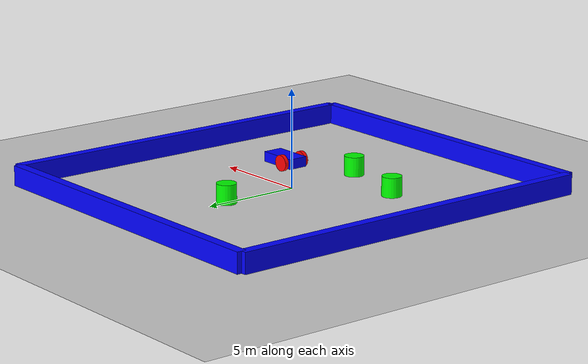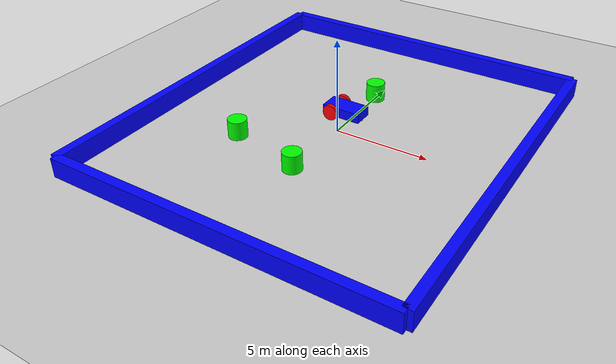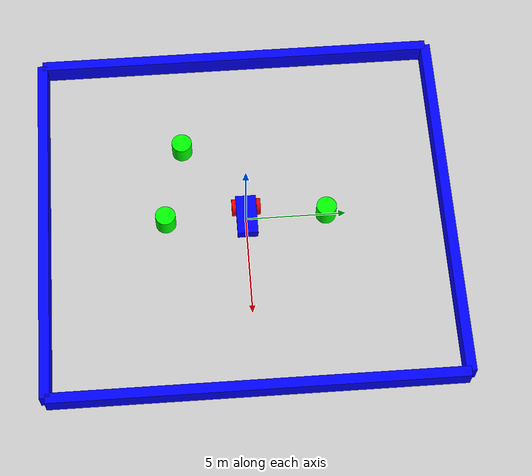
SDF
<?xml version="1.0" ?>
<sdf version="1.8">
    <world name="sensor_world">
        <physics name="1ms" type="ignored">
            <max_step_size>0.001</max_step_size>
            <real_time_factor>1.0</real_time_factor>
        </physics>
        <plugin
            filename="ignition-gazebo-physics-system"
            name="ignition::gazebo::systems::Physics">
        </plugin>
        <plugin
            filename="ignition-gazebo-user-commands-system"
            name="ignition::gazebo::systems::UserCommands">
        </plugin>
        <plugin
            filename="ignition-gazebo-scene-broadcaster-system"
            name="ignition::gazebo::systems::SceneBroadcaster">
        </plugin>
        <plugin filename="ignition-gazebo-imu-system"
                name="ignition::gazebo::systems::Imu">
        </plugin>
        <plugin filename="ignition-gazebo-sensors-system"
                name="ignition::gazebo::systems::Sensors">
            <render_engine>ogre2</render_engine>
        </plugin>
        <plugin filename="ignition-gazebo-contact-system"
                name="ignition::gazebo::systems::Contact">
        </plugin>
        <gui fullscreen="0">

            <!-- 3D scene -->
            <plugin filename="GzScene3D" name="3D View">
                <ignition-gui>
                <title>3D View</title>
                <property type="bool" key="showTitleBar">false</property>
                <property type="string" key="state">docked</property>
                </ignition-gui>

                <engine>ogre2</engine>
                <scene>scene</scene>
                <ambient_light>0.4 0.4 0.4</ambient_light>
                <background_color>0.8 0.8 0.8</background_color>
            </plugin>

            <!-- World control -->
            <plugin filename="WorldControl" name="World control">
                <ignition-gui>
                <title>World control</title>
                <property type="bool" key="showTitleBar">false</property>
                <property type="bool" key="resizable">false</property>
                <property type="double" key="height">72</property>
                <property type="double" key="width">121</property>
                <property type="double" key="z">1</property>

                <property type="string" key="state">floating</property>
                <anchors target="3D View">
                    <line own="left" target="left"/>
                    <line own="bottom" target="bottom"/>
                </anchors>
                </ignition-gui>

                <play_pause>true</play_pause>
                <step>true</step>
                <start_paused>true</start_paused>
                <service>/world/sensor_world/control</service>
                <stats_topic>/world/sensor_world/stats</stats_topic>
            </plugin>

            <!-- World statistics -->
            <plugin filename="WorldStats" name="World stats">
                <ignition-gui>
                <title>World stats</title>
                <property type="bool" key="showTitleBar">false</property>
                <property type="bool" key="resizable">false</property>
                <property type="double" key="height">110</property>
                <property type="double" key="width">290</property>
                <property type="double" key="z">1</property>

                <property type="string" key="state">floating</property>
                <anchors target="3D View">
                    <line own="right" target="right"/>
                    <line own="bottom" target="bottom"/>
                </anchors>
                </ignition-gui>

                <sim_time>true</sim_time>
                <real_time>true</real_time>
                <real_time_factor>true</real_time_factor>
                <iterations>true</iterations>
                <topic>/world/sensor_world/stats</topic>

            </plugin>

            <!-- Entity tree -->
            <plugin filename="EntityTree" name="Entity tree">
            </plugin>

            <!-- KeyPublisher plugin-->
            <plugin filename="KeyPublisher" name="Key Publisher"/>

        </gui>

        <light type="directional" name="sun">
            <cast_shadows>true</cast_shadows>
            <pose>0 0 10 0 0 0</pose>
            <diffuse>0.8 0.8 0.8 1</diffuse>
            <specular>0.2 0.2 0.2 1</specular>
            <attenuation>
                <range>1000</range>
                <constant>0.9</constant>
                <linear>0.01</linear>
                <quadratic>0.001</quadratic>
            </attenuation>
            <direction>-0.5 0.1 -0.9</direction>
        </light>

        <model name="ground_plane">
            <static>true</static>
            <link name="link">
                <collision name="collision">
                <geometry>
                    <plane>
                    <normal>0 0 1</normal>
                    </plane>
                </geometry>
                </collision>
                <visual name="visual">
                <geometry>
                    <plane>
                    <normal>0 0 1</normal>
                    <size>100 100</size>
                    </plane>
                </geometry>
                <material>
                    <ambient>0.8 0.8 0.8 1</ambient>
                    <diffuse>0.8 0.8 0.8 1</diffuse>
                    <specular>0.8 0.8 0.8 1</specular>
                </material>
                </visual>
            </link>
        </model>

        <model name='vehicle_blue' canonical_link='chassis'>
            <pose relative_to='world'>0 0 1 0 0 0</pose>   <!--the pose is relative to the world by default-->

            <frame name="lidar_frame" attached_to='chassis'>
                <pose>0.8 0 0.5 0 0 0</pose>
            </frame>

            <link name='chassis'>
                <pose relative_to='__model__'>0.5 0 0.4 0 0 0</pose>
                <inertial> <!--inertial properties of the link mass, inertia matix-->
                    <mass>1.14395</mass>
                    <inertia>
                        <ixx>0.126164</ixx>
                        <ixy>0</ixy>
                        <ixz>0</ixz>
                        <iyy>0.416519</iyy>
                        <iyz>0</iyz>
                        <izz>0.481014</izz>
                    </inertia>
                </inertial>
                <visual name='visual'>
                    <geometry>
                        <box>
                            <size>2.0 1.0 0.5</size> <!--question: this size is in meter-->
                        </box>
                    </geometry>
                    <!--let's add color to our link-->
                    <material>
                        <ambient>0.0 0.0 1.0 1</ambient>
                        <diffuse>0.0 0.0 1.0 1</diffuse>
                        <specular>0.0 0.0 1.0 1</specular>
                    </material>
                </visual>
                <collision name='collision'> <!--todo: describe why we need the collision-->
                    <geometry>
                        <box>
                            <size>2.0 1.0 0.5</size>
                        </box>
                    </geometry>
                </collision>
                <sensor name="imu_sensor" type="imu">
                    <always_on>1</always_on>
                    <update_rate>1</update_rate>
                    <visualize>true</visualize>
                    <topic>imu</topic>
                </sensor>
                <sensor name='gpu_lidar' type='gpu_lidar'>"
                    <pose relative_to='lidar_frame'>0 0 0 0 0 0</pose>
                    <topic>lidar</topic>
                    <update_rate>10</update_rate>
                    <ray>
                    <scan>
                        <horizontal>
                        <samples>640</samples>
                        <resolution>1</resolution>
                        <min_angle>-1.396263</min_angle>
                        <max_angle>1.396263</max_angle>
                        </horizontal>
                        <vertical>
                        <samples>1</samples>
                        <resolution>0.01</resolution>
                        <min_angle>0</min_angle>
                        <max_angle>0</max_angle>
                        </vertical>
                    </scan>
                    <range>
                        <min>0.08</min>
                        <max>10.0</max>
                        <resolution>0.01</resolution>
                    </range>
                    </ray>
                    <alwaysOn>1</alwaysOn>
                    <visualize>true</visualize>
                </sensor>
            </link>

            <!--let's build the left wheel-->
            <link name='left_wheel'>
                <pose relative_to="chassis">-0.5 0.6 0 -1.5707 0 0</pose> <!--angles are in radian-->
                <inertial>
                    <mass>2</mass>
                    <inertia>
                        <ixx>0.145833</ixx>
                        <ixy>0</ixy>
                        <ixz>0</ixz>
                        <iyy>0.145833</iyy>
                        <iyz>0</iyz>
                        <izz>0.125</izz>
                    </inertia>
                </inertial>
                <visual name='visual'>
                    <geometry>
                        <cylinder>
                            <radius>0.4</radius>
                            <length>0.2</length>
                        </cylinder>
                    </geometry>
                    <material>
                        <ambient>1.0 0.0 0.0 1</ambient>
                        <diffuse>1.0 0.0 0.0 1</diffuse>
                        <specular>1.0 0.0 0.0 1</specular>
                    </material>
                </visual>
                <collision name='collision'>
                    <geometry>
                        <cylinder>
                            <radius>0.4</radius>
                            <length>0.2</length>
                        </cylinder>
                    </geometry>
                </collision>
            </link>

            <!--copy and paste for right wheel but change position-->
            <link name='right_wheel'>
                <pose relative_to="chassis">-0.5 -0.6 0 -1.5707 0 0</pose> <!--angles are in radian-->
                <inertial>
                    <mass>1</mass>
                    <inertia>
                        <ixx>0.145833</ixx>
                        <ixy>0</ixy>
                        <ixz>0</ixz>
                        <iyy>0.145833</iyy>
                        <iyz>0</iyz>
                        <izz>0.125</izz>
                    </inertia>
                </inertial>
                <visual name='visual'>
                    <geometry>
                        <cylinder>
                            <radius>0.4</radius>
                            <length>0.2</length>
                        </cylinder>
                    </geometry>
                    <material>
                        <ambient>1.0 0.0 0.0 1</ambient>
                        <diffuse>1.0 0.0 0.0 1</diffuse>
                        <specular>1.0 0.0 0.0 1</specular>
                    </material>
                </visual>
                <collision name='collision'>
                    <geometry>
                        <cylinder>
                            <radius>0.4</radius>
                            <length>0.2</length>
                        </cylinder>
                    </geometry>
                </collision>
            </link>

            <frame name="caster_frame" attached_to='chassis'>
                <pose>0.8 0 -0.2 0 0 0</pose>
            </frame>

            <!--caster wheel-->
            <link name='caster'>
                <pose relative_to='caster_frame'/>
                <inertial>
                    <mass>1</mass>
                    <inertia>
                        <ixx>0.1</ixx>
                        <ixy>0</ixy>
                        <ixz>0</ixz>
                        <iyy>0.1</iyy>
                        <iyz>0</iyz>
                        <izz>0.1</izz>
                    </inertia>
                </inertial>
                <visual name='visual'>
                    <geometry>
                        <sphere>
                            <radius>0.2</radius>
                        </sphere>
                    </geometry>
                    <material>
                        <ambient>0.0 1 0.0 1</ambient>
                        <diffuse>0.0 1 0.0 1</diffuse>
                        <specular>0.0 1 0.0 1</specular>
                    </material>
                </visual>
                <collision name='collision'>
                    <geometry>
                        <sphere>
                            <radius>0.2</radius>
                        </sphere>
                    </geometry>
                </collision>
            </link>

            <!--connecting these links together using joints-->
            <joint name='left_wheel_joint' type='revolute'> <!--continous joint is not supported yet-->
                <pose relative_to='left_wheel'/>
                <parent>chassis</parent>
                <child>left_wheel</child>
                <axis>
                    <xyz expressed_in='__model__'>0 1 0</xyz> <!--can be descired to any frame or even arbitrary frames-->
                    <limit>
                        <lower>-1.79769e+308</lower>    <!--negative infinity-->
                        <upper>1.79769e+308</upper>     <!--positive infinity-->
                    </limit>
                </axis>
            </joint>

            <joint name='right_wheel_joint' type='revolute'>
                <pose relative_to='right_wheel'/>
                <parent>chassis</parent>
                <child>right_wheel</child>
                <axis>
                    <xyz expressed_in='__model__'>0 1 0</xyz>
                    <limit>
                        <lower>-1.79769e+308</lower>    <!--negative infinity-->
                        <upper>1.79769e+308</upper>     <!--positive infinity-->
                    </limit>
                </axis>
            </joint>

            <!--different type of joints ball joint--> <!--defult value is the child-->
            <joint name='caster_wheel' type='ball'>
                <parent>chassis</parent>
                <child>caster</child>
            </joint>

            <!--diff drive plugin-->
            <plugin
                filename="ignition-gazebo-diff-drive-system"
                name="ignition::gazebo::systems::DiffDrive">
                <left_joint>left_wheel_joint</left_joint>
                <right_joint>right_wheel_joint</right_joint>
                <wheel_separation>1.2</wheel_separation>
                <wheel_radius>0.4</wheel_radius>
                <odom_publish_frequency>1</odom_publish_frequency>
                <topic>cmd_vel</topic>
            </plugin>
        </model>

        <!-- far wall -->
        <model name='wallback'>
            <static>true</static>
            <!-- pose: X -->
            <pose>9 0 0 0 0 0</pose><!--pose relative to the world-->
            <link name='box'>
                <pose/>
                <inertial> <!--inertial properties of the link mass, inertia matix-->
                    <mass>1.14395</mass>
                    <inertia>
                        <ixx>9.532917</ixx>
                        <ixy>0</ixy>
                        <ixz>0</ixz>
                        <iyy>0.023832</iyy>
                        <iyz>0</iyz>
                        <izz>9.556749</izz>
                    </inertia>
                </inertial>
                <visual name='visual'>
                    <geometry>
                        <box>
                            <size>0.5 20.0 2.0</size>
                        </box>
                    </geometry>
                    <!--let's add color to our link-->
                    <material>
                        <ambient>0.0 0.0 1.0 1</ambient>
                        <diffuse>0.0 0.0 1.0 1</diffuse>
                        <specular>0.0 0.0 1.0 1</specular>
                    </material>
                </visual>
                <collision name='collision'> <!--todo: describe why we need the collision-->
                    <geometry>
                        <box>
                            <size>0.5 20.0 2.0</size>
                        </box>
                    </geometry>
                </collision>
                <sensor name='sensor_contact' type='contact'>
                    <contact>
                        <collision>collision</collision>
                    </contact>
                </sensor>
            </link>
            <plugin filename="ignition-gazebo-touchplugin-system"
                    name="ignition::gazebo::systems::TouchPlugin">
                <target>vehicle_blue</target>
                <namespace>wall</namespace>
                <time>0.001</time>
                <enabled>true</enabled>
            </plugin>
        </model>
        <!-- end far wall -->

        <!-- near wall -->
        <model name='wallnear'>
            <static>true</static>
            <!-- pose: X -->
            <pose>-9 0 0 0 0 0</pose><!--pose relative to the world-->
            <link name='box'>
                <pose/>
                <inertial> <!--inertial properties of the link mass, inertia matix-->
                    <mass>1.14395</mass>
                    <inertia>
                        <ixx>9.532917</ixx>
                        <ixy>0</ixy>
                        <ixz>0</ixz>
                        <iyy>0.023832</iyy>
                        <iyz>0</iyz>
                        <izz>9.556749</izz>
                    </inertia>
                </inertial>
                <visual name='visual'>
                    <geometry>
                        <box>
                            <size>0.5 20.0 2.0</size>
                        </box>
                    </geometry>
                    <!--let's add color to our link-->
                    <material>
                        <ambient>0.0 0.0 1.0 1</ambient>
                        <diffuse>0.0 0.0 1.0 1</diffuse>
                        <specular>0.0 0.0 1.0 1</specular>
                    </material>
                </visual>
                <collision name='collision'> <!--todo: describe why we need the collision-->
                    <geometry>
                        <box>
                            <size>0.5 20.0 2.0</size>
                        </box>
                    </geometry>
                </collision>
                <sensor name='sensor_contact' type='contact'>
                    <contact>
                        <collision>collision</collision>
                    </contact>
                </sensor>
            </link>
            <plugin filename="ignition-gazebo-touchplugin-system"
                    name="ignition::gazebo::systems::TouchPlugin">
                <target>vehicle_blue</target>
                <namespace>wall</namespace>
                <time>0.001</time>
                <enabled>true</enabled>
            </plugin>
        </model>
        <!-- end near wall -->

        <!-- right wall -->
        <model name='wallright'>
            <static>true</static>
            <!-- pose: X -->
            <pose>0 -10 0 0 0 0</pose><!--pose relative to the world-->
            <link name='box'>
                <pose/>
                <inertial> <!--inertial properties of the link mass, inertia matix-->
                    <mass>1.14395</mass>
                    <inertia>
                        <ixx>9.532917</ixx>
                        <ixy>0</ixy>
                        <ixz>0</ixz>
                        <iyy>0.023832</iyy>
                        <iyz>0</iyz>
                        <izz>9.556749</izz>
                    </inertia>
                </inertial>
                <visual name='visual'>
                    <geometry>
                        <box>
                            <size>18.0 0.5 2.0</size>
                        </box>
                    </geometry>
                    <!--let's add color to our link-->
                    <material>
                        <ambient>0.0 0.0 1.0 1</ambient>
                        <diffuse>0.0 0.0 1.0 1</diffuse>
                        <specular>0.0 0.0 1.0 1</specular>
                    </material>
                </visual>
                <collision name='collision'> <!--todo: describe why we need the collision-->
                    <geometry>
                        <box>
                            <size>18.0 0.5 2.0</size>
                        </box>
                    </geometry>
                </collision>
                <sensor name='sensor_contact' type='contact'>
                    <contact>
                        <collision>collision</collision>
                    </contact>
                </sensor>
            </link>
            <plugin filename="ignition-gazebo-touchplugin-system"
                    name="ignition::gazebo::systems::TouchPlugin">
                <target>vehicle_blue</target>
                <namespace>wall</namespace>
                <time>0.001</time>
                <enabled>true</enabled>
            </plugin>
        </model>
        <!-- end right wall -->

        <!-- left wall -->
        <model name='wallleft'>
            <static>true</static>
            <!-- pose: X -->
            <pose>0 10 0 0 0 0</pose><!--pose relative to the world-->
            <link name='box'>
                <pose/>
                <inertial> <!--inertial properties of the link mass, inertia matix-->
                    <mass>1.14395</mass>
                    <inertia>
                        <ixx>9.532917</ixx>
                        <ixy>0</ixy>
                        <ixz>0</ixz>
                        <iyy>0.023832</iyy>
                        <iyz>0</iyz>
                        <izz>9.556749</izz>
                    </inertia>
                </inertial>
                <visual name='visual'>
                    <geometry>
                        <box>
                            <size>18.0 0.5 2.0</size>
                        </box>
                    </geometry>
                    <!--let's add color to our link-->
                    <material>
                        <ambient>0.0 0.0 1.0 1</ambient>
                        <diffuse>0.0 0.0 1.0 1</diffuse>
                        <specular>0.0 0.0 1.0 1</specular>
                    </material>
                </visual>
                <collision name='collision'> <!--todo: describe why we need the collision-->
                    <geometry>
                        <box>
                            <size>18.0 0.5 2.0</size>
                        </box>
                    </geometry>
                </collision>
                <sensor name='sensor_contact' type='contact'>
                    <contact>
                        <collision>collision</collision>
                    </contact>
                </sensor>
            </link>
            <plugin filename="ignition-gazebo-touchplugin-system"
                    name="ignition::gazebo::systems::TouchPlugin">
                <target>vehicle_blue</target>
                <namespace>wall</namespace>
                <time>0.001</time>
                <enabled>true</enabled>
            </plugin>
        </model>
        <!-- end right wall -->

    <!-- obstacle cylinder1 -->
    <model name="cylinder1">
      <pose>0 4 0.5 0 0 0</pose>
      <link name="cylinder_link">
        <inertial>
          <inertia>
            <ixx>0.1458</ixx>
            <ixy>0</ixy>
            <ixz>0</ixz>
            <iyy>0.1458</iyy>
            <iyz>0</iyz>
            <izz>0.125</izz>
          </inertia>
          <mass>1.0</mass>
        </inertial>
        <collision name="cylinder_collision">
          <geometry>
            <cylinder>
              <radius>0.5</radius>
              <length>1.0</length>
            </cylinder>
          </geometry>
        </collision>

        <visual name="cylinder_visual">
          <geometry>
            <cylinder>
              <radius>0.5</radius>
              <length>1.0</length>
            </cylinder>
          </geometry>
          <material>
            <ambient>0 1 0 1</ambient>
            <diffuse>0 1 0 1</diffuse>
            <specular>0 1 0 1</specular>
          </material>
        </visual>
      </link>
    </model>

    <!-- obstacle cylinder2 -->
    <model name="cylinder2">
      <pose>-4 -3 0.5 0 0 0</pose>
      <link name="cylinder_link">
        <inertial>
          <inertia>
            <ixx>0.1458</ixx>
            <ixy>0</ixy>
            <ixz>0</ixz>
            <iyy>0.1458</iyy>
            <iyz>0</iyz>
            <izz>0.125</izz>
          </inertia>
          <mass>1.0</mass>
        </inertial>
        <collision name="cylinder_collision">
          <geometry>
            <cylinder>
              <radius>0.5</radius>
              <length>1.0</length>
            </cylinder>
          </geometry>
        </collision>

        <visual name="cylinder_visual">
          <geometry>
            <cylinder>
              <radius>0.5</radius>
              <length>1.0</length>
            </cylinder>
          </geometry>
          <material>
            <ambient>0 1 0 1</ambient>
            <diffuse>0 1 0 1</diffuse>
            <specular>0 1 0 1</specular>
          </material>
        </visual>
      </link>
    </model>

    <!-- obstacle cylinder3 -->
    <model name="cylinder3">
      <pose>0 -4 0.5 0 0 0</pose>
      <link name="cylinder_link">
        <inertial>
          <inertia>
            <ixx>0.1458</ixx>
            <ixy>0</ixy>
            <ixz>0</ixz>
            <iyy>0.1458</iyy>
            <iyz>0</iyz>
            <izz>0.125</izz>
          </inertia>
          <mass>1.0</mass>
        </inertial>
        <collision name="cylinder_collision">
          <geometry>
            <cylinder>
              <radius>0.5</radius>
              <length>1.0</length>
            </cylinder>
          </geometry>
        </collision>

        <visual name="cylinder_visual">
          <geometry>
            <cylinder>
              <radius>0.5</radius>
              <length>1.0</length>
            </cylinder>
          </geometry>
          <material>
            <ambient>0 1 0 1</ambient>
            <diffuse>0 1 0 1</diffuse>
            <specular>0 1 0 1</specular>
          </material>
        </visual>
      </link>
    </model>

        <!-- Moving Forward-->
        <plugin filename="ignition-gazebo-triggered-publisher-system"
                name="ignition::gazebo::systems::TriggeredPublisher">
            <input type="ignition.msgs.Int32" topic="/keyboard/keypress">
                <match field="data">16777235</match>
            </input>
            <output type="ignition.msgs.Twist" topic="/cmd_vel">
                linear: {x: 0.5}, angular: {z: 0.0}
            </output>
        </plugin>

        <!-- Moving Backward-->
        <plugin filename="ignition-gazebo-triggered-publisher-system"
                name="ignition::gazebo::systems::TriggeredPublisher">
            <input type="ignition.msgs.Int32" topic="/keyboard/keypress">
                <match field="data">16777237</match>
            </input>
            <output type="ignition.msgs.Twist" topic="/cmd_vel">
                linear: {x: -0.5}, angular: {z: 0.0}
            </output>
        </plugin>

        <!-- Rotating right-->
        <plugin filename="ignition-gazebo-triggered-publisher-system"
                name="ignition::gazebo::systems::TriggeredPublisher">
            <input type="ignition.msgs.Int32" topic="/keyboard/keypress">
                <match field="data">16777236</match>
            </input>
            <output type="ignition.msgs.Twist" topic="/cmd_vel">
                linear: {x: 0.0}, angular: {z: -0.5}
            </output>
        </plugin>

        <!--Rotating left-->
        <plugin filename="ignition-gazebo-triggered-publisher-system"
                name="ignition::gazebo::systems::TriggeredPublisher">
            <input type="ignition.msgs.Int32" topic="/keyboard/keypress">
                <match field="data">16777234</match>
            </input>
            <output type="ignition.msgs.Twist" topic="/cmd_vel">
                linear: {x: 0.0}, angular: {z: 0.5}
            </output>
        </plugin>

        <!--stop when hit the wall-->
        <plugin filename="ignition-gazebo-triggered-publisher-system"
                name="ignition::gazebo::systems::TriggeredPublisher">
            <input type="ignition.msgs.Boolean" topic="/wall/touched">
                <match>data: true</match>
            </input>
            <output type="ignition.msgs.Twist" topic="/cmd_vel">
                linear: {x: 0.0}, angular: {z: 0.0}
            </output>
        </plugin>
    </world>
</sdf>
